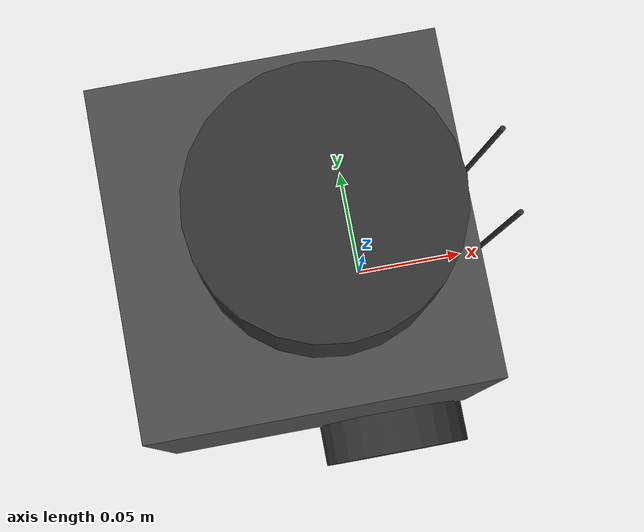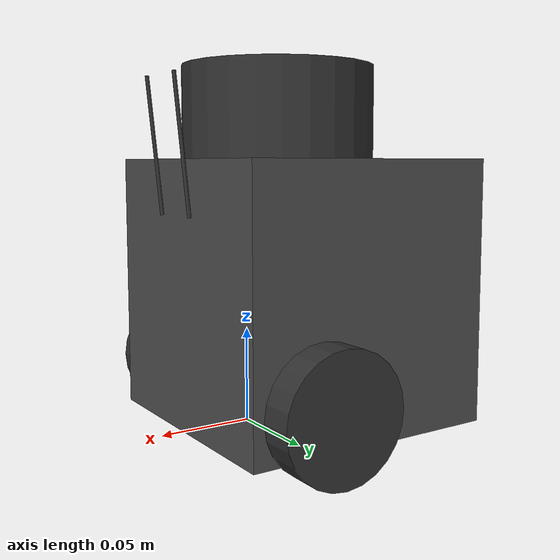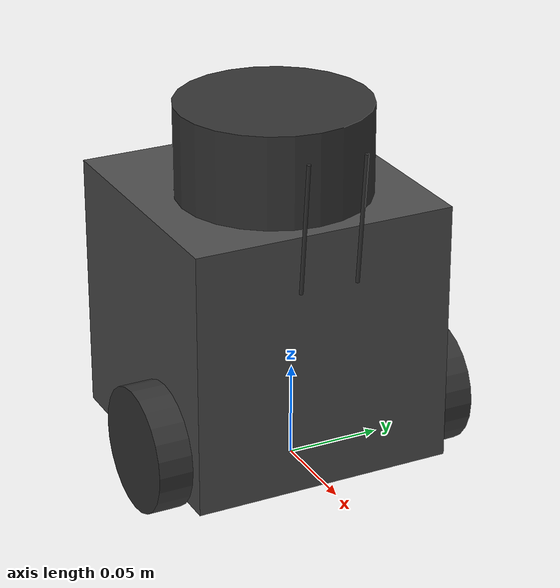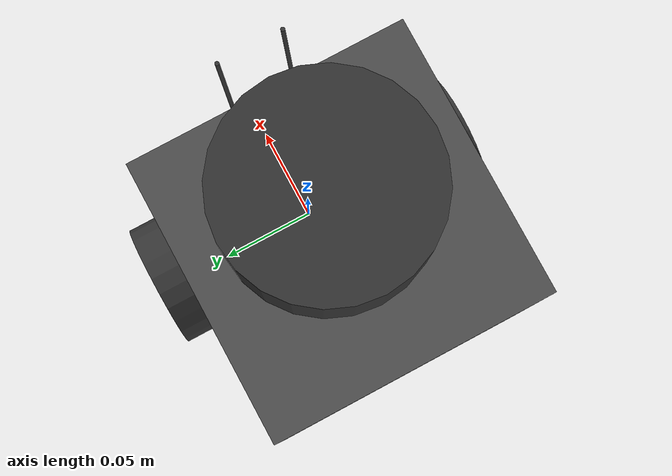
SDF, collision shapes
<?xml version="1.0" ?>
<sdf version="1.6">
  <model name="turtlebot3_burger_cam">
    <pose>0.0 0.0 0.0 0.0 0.0 0.0</pose>

    <link name="base_footprint"/>

    <link name="base_link">

      <inertial>
        <pose>-0.064 0 0.070 0 0 0</pose>
        <inertia>
          <ixx>1.9527e-02</ixx>
          <ixy>0</ixy>
          <ixz>0</ixz>
          <iyy>1.9527e-02</iyy>
          <iyz>0</iyz>
          <izz>1.9527e-02</izz>
        </inertia>
        <mass>8.2573504e-01</mass>
      </inertial>

      <collision name="base_collision">
        <pose>-0.032 0 0.070 0 0 0</pose>
        <geometry>
          <box>
            <size>0.14 0.14 0.14</size>
          </box>
        </geometry>
      </collision>

      <visual name="base_visual">
        <pose>-0.032 0 0 0 0 0</pose>
        <geometry>
          <mesh>
            <uri>model://turtlebot3_common/meshes/bases/burger_base.stl</uri>
            <scale>0.001 0.001 0.001</scale>
          </mesh>
        </geometry>
        <material>
          <ambient>0.3 0.3 0.3 1.0</ambient>
          <diffuse>0.3 0.3 0.3 1.0</diffuse>
        </material>
      </visual>
    </link>
<!-- Hook-->
    <link name="dynamixel">
      <pose>0.028 0 0.104 0 0 0</pose>
      <visual name="dynamixel_v">
        <geometry>
          <box>
            <size>0.034 0.026 0.020</size>
          </box>
        </geometry>
      </visual>
      <inertial>
        <mass>0.05</mass>
        <inertia>
          <ixx>4.48e-6</ixx>
          <iyy>6.48e-6</iyy>
          <izz>7.63e-6</izz>
          <ixy>0</ixy>
          <ixz>0</ixz>
          <iyz>0</iyz>
        </inertia>
      </inertial>
    </link>

    <joint name="dynamixel_joint" type="fixed">
      <parent>base_link</parent>
      <child>dynamixel</child>
      <pose>0.02 0 0.15 0 0 0</pose>
      <axis>
        <xyz>0 0 1</xyz>
      </axis>
    </joint>

    <link name="arm_left">
      <pose>0.04 0.0155 0.104 -1.57 -1.47 0</pose>
      <visual name="mount_left_v">
        <geometry>
          <cylinder>
            <radius>0.0075</radius>
            <length>0.005</length>
          </cylinder>
        </geometry>
        <material>
          <ambient>0.2 0.2 0.2 1.0</ambient>
          <diffuse>0.2 0.2 0.2 1.0</diffuse>
        </material>
      </visual>
      <visual name="arm_left_v">
        <pose>0.0425 0 0 0 1.57 0</pose>
        <geometry>
          <cylinder>
            <radius>0.001</radius>
            <length>0.07</length>
          </cylinder>
        </geometry>
        <material>
          <ambient>0.5 0.5 0.5 1.0</ambient>
          <diffuse>0.5 0.5 0.5 1.0</diffuse>
        </material>
      </visual>
      <collision name="arm_left_c">
        <pose>0.0425 0 0 0 1.57 0</pose>
        <geometry>
          <cylinder>
            <radius>0.001</radius>
            <length>0.07</length>
          </cylinder>
        </geometry>
      </collision>
      <inertial>
        <mass>0.003</mass>
        <inertia>
          <ixx>1.5e-9</ixx>
          <iyy>2.45e-6</iyy>
          <izz>2.45e-6</izz>
          <ixy>0</ixy>
          <ixz>0</ixz>
          <iyz>0</iyz>
        </inertia>
      </inertial>
    </link>

    <joint name="arm_left_joint" type="fixed">
      <parent>dynamixel</parent>
      <child>arm_left</child>
      <pose>0 0 0 0 0 0</pose>
      <axis>
        <xyz>0 0 1</xyz>
      </axis>
    </joint>

    <link name="arm_right">
      <pose>0.04 -0.0155 0.104 -1.57 -1.47 0</pose>
      <visual name="mount_right_v">
        <geometry>
          <cylinder>
            <radius>0.0075</radius>
            <length>0.005</length>
          </cylinder>
        </geometry>
        <material>
          <ambient>0.2 0.2 0.2 1.0</ambient>
          <diffuse>0.2 0.2 0.2 1.0</diffuse>
        </material>
      </visual>
      <visual name="arm_right_v">
        <pose>0.0425 0 0 0 1.57 0</pose>
        <geometry>
          <cylinder>
            <radius>0.001</radius>
            <length>0.07</length>
          </cylinder>
        </geometry>
        <material>
          <ambient>0.5 0.5 0.5 1.0</ambient>
          <diffuse>0.5 0.5 0.5 1.0</diffuse>
        </material>
      </visual>
      <collision name="arm_right_c">
        <pose>0.0425 0 0 0 1.57 0</pose>
        <geometry>
          <cylinder>
            <radius>0.001</radius>
            <length>0.07</length>
          </cylinder>
        </geometry>
      </collision>
      <inertial>
        <mass>0.003</mass>
        <inertia>
          <ixx>1.5e-9</ixx>
          <iyy>2.45e-6</iyy>
          <izz>2.45e-6</izz>
          <ixy>0</ixy>
          <ixz>0</ixz>
          <iyz>0</iyz>
        </inertia>
      </inertial>
    </link>

    <joint name="arm_right_joint" type="fixed">
      <parent>dynamixel</parent>
      <child>arm_right</child>
      <pose>0 0 0 0 0 0</pose>
      <axis>
        <xyz>0 0 1</xyz>
      </axis>
      <limit>
        <lower>0</lower>
        <upper>1.4</upper>
        <effort>1.0</effort>
        <velocity>1.0</velocity>
      </limit>
    </joint>
    <link name="imu_link">
      <sensor name="tb3_imu" type="imu">
        <always_on>true</always_on>
        <update_rate>200</update_rate>
        <topic>imu</topic>
        <imu>
          <angular_velocity>
            <x>
              <noise type="gaussian">
                <mean>0.0</mean>
                <stddev>2e-4</stddev>
              </noise>
            </x>
            <y>
              <noise type="gaussian">
                <mean>0.0</mean>
                <stddev>2e-4</stddev>
              </noise>
            </y>
            <z>
              <noise type="gaussian">
                <mean>0.0</mean>
                <stddev>2e-4</stddev>
              </noise>
            </z>
          </angular_velocity>
          <linear_acceleration>
            <x>
              <noise type="gaussian">
                <mean>0.0</mean>
                <stddev>1.7e-2</stddev>
              </noise>
            </x>
            <y>
              <noise type="gaussian">
                <mean>0.0</mean>
                <stddev>1.7e-2</stddev>
              </noise>
            </y>
            <z>
              <noise type="gaussian">
                <mean>0.0</mean>
                <stddev>1.7e-2</stddev>
              </noise>
            </z>
          </linear_acceleration>
        </imu>
      </sensor>
    </link>

    <link name="base_scan">
      <inertial>
        <pose>-0.020 0 0.161 0 0 0</pose>
        <inertia>
          <ixx>0.0001</ixx>
          <ixy>0.000</ixy>
          <ixz>0.000</ixz>
          <iyy>0.0001</iyy>
          <iyz>0.000</iyz>
          <izz>0.0001</izz>
        </inertia>
        <mass>0.114</mass>
      </inertial>

      <collision name="lidar_sensor_collision">
        <pose>-0.020 0 0.161 0 0 0</pose>
        <geometry>
          <cylinder>
            <radius>0.0508</radius>
            <length>0.055</length>
          </cylinder>
        </geometry>
      </collision>

      <visual name="lidar_sensor_visual">
        <pose>-0.032 0 0.171 0 0 0</pose>
        <geometry>
          <mesh>
            <uri>model://turtlebot3_common/meshes/sensors/lds.stl</uri>
            <scale>0.001 0.001 0.001</scale>
          </mesh>
        </geometry>
        <material>
          <ambient>0.2 0.2 0.2 1.0</ambient>
          <diffuse>0.2 0.2 0.2 1.0</diffuse>
        </material>
      </visual>

      <sensor name="hls_lfcd_lds" type="gpu_lidar">
        <always_on>true</always_on>
        <visualize>false</visualize>
        <pose>-0.032 0 0.171 0 0 0</pose>
        <update_rate>5</update_rate>
        <topic>scan</topic>
        <gz_frame_id>base_scan</gz_frame_id>
        <lidar>
          <scan>
            <horizontal>
              <samples>360</samples>
              <resolution>1.000000</resolution>
              <min_angle>0.000000</min_angle>
              <max_angle>6.280000</max_angle>
            </horizontal>
          </scan>
          <range>
            <min>0.120000</min>
            <max>3.5</max>
            <resolution>0.015000</resolution>
          </range>
          <noise>
            <type>gaussian</type>
            <mean>0.0</mean>
            <stddev>0.01</stddev>
          </noise>
        </lidar>
      </sensor>
    </link>

    <link name="wheel_left_link">

      <inertial>
        <pose>0 0.08 0.023 -1.57 0 0</pose>
        <inertia>
          <ixx>5.445e-05</ixx>
          <ixy>0</ixy>
          <ixz>0</ixz>
          <iyy>5.445e-05</iyy>
          <iyz>0</iyz>
          <izz>1.089e-04</izz>
        </inertia>
        <mass>0.1</mass>
      </inertial>

      <collision name="wheel_left_collision">
        <pose>0 0.08 0.023 -1.57 0 0</pose>
        <geometry>
          <cylinder>
            <radius>0.033</radius>
            <length>0.018</length>
          </cylinder>
        </geometry>
        <surface>
          <!-- This friction pamareter don't contain reliable data!! -->
          <friction>
            <ode>
              <mu>100000.0</mu>
              <mu2>100000.0</mu2>
              <fdir1>0 0 0</fdir1>
              <slip1>0.0</slip1>
              <slip2>0.0</slip2>
            </ode>
          </friction>
          <contact>
            <ode>
              <soft_cfm>0</soft_cfm>
              <soft_erp>0.2</soft_erp>
              <kp>1e+5</kp>
              <kd>1</kd>
              <max_vel>0.01</max_vel>
              <min_depth>0.001</min_depth>
            </ode>
          </contact>
        </surface>
      </collision>

      <visual name="wheel_left_visual">
        <pose>0 0.08 0.023 0 0 0</pose>
        <geometry>
          <mesh>
            <uri>model://turtlebot3_common/meshes/wheels/left_tire.stl</uri>
            <scale>0.001 0.001 0.001</scale>
          </mesh>
        </geometry>
        <material>
          <ambient>0.2 0.2 0.2 1.0</ambient>
          <diffuse>0.2 0.2 0.2 1.0</diffuse>
        </material>
      </visual>
    </link>

    <link name="wheel_right_link">

      <inertial>
        <pose>0.0 -0.08 0.023 -1.57 0 0</pose>
        <inertia>
          <ixx>5.445e-05</ixx>
          <ixy>0</ixy>
          <ixz>0</ixz>
          <iyy>5.445e-05</iyy>
          <iyz>0</iyz>
          <izz>1.089e-04</izz>
        </inertia>
        <mass>0.1</mass>
      </inertial>

      <collision name="wheel_right_collision">
        <pose>0.0 -0.08 0.023 -1.57 0 0</pose>
        <geometry>
          <cylinder>
            <radius>0.033</radius>
            <length>0.018</length>
          </cylinder>
        </geometry>
        <surface>
          <!-- This friction pamareter don't contain reliable data!! -->
          <friction>
            <ode>
              <mu>100000.0</mu>
              <mu2>100000.0</mu2>
              <fdir1>0 0 0</fdir1>
              <slip1>0.0</slip1>
              <slip2>0.0</slip2>
            </ode>
          </friction>
          <contact>
            <ode>
              <soft_cfm>0</soft_cfm>
              <soft_erp>0.2</soft_erp>
              <kp>1e+5</kp>
              <kd>1</kd>
              <max_vel>0.01</max_vel>
              <min_depth>0.001</min_depth>
            </ode>
          </contact>
        </surface>
      </collision>

      <visual name="wheel_right_visual">
        <pose>0.0 -0.08 0.023 0 0 0</pose>
        <geometry>
          <mesh>
            <uri>model://turtlebot3_common/meshes/wheels/right_tire.stl</uri>
            <scale>0.001 0.001 0.001</scale>
          </mesh>
        </geometry>
        <material>
          <ambient>0.2 0.2 0.2 1.0</ambient>
          <diffuse>0.2 0.2 0.2 1.0</diffuse>
        </material>
      </visual>
    </link>

    <link name='caster_back_link'>
      <pose>-0.081 0 -0.004 -1.57 0 0</pose>
      <inertial>
        <mass>0.005</mass>
        <inertia>
          <ixx>0.00001</ixx>
          <ixy>0.000</ixy>
          <ixz>0.000</ixz>
          <iyy>0.00001</iyy>
          <iyz>0.000</iyz>
          <izz>0.00001</izz>
        </inertia>
      </inertial>
      <collision name='collision'>
        <geometry>
          <sphere>
            <radius>0.005000</radius>
          </sphere>
        </geometry>
        <surface>
          <contact>
            <ode>
              <soft_cfm>0</soft_cfm>
              <soft_erp>0.2</soft_erp>
              <kp>1e+5</kp>
              <kd>1</kd>
              <max_vel>0.01</max_vel>
              <min_depth>0.001</min_depth>
            </ode>
          </contact>
        </surface>
      </collision>
    </link>

    <link name="camera_link">
      <pose>0.03 0.0 0.15 0 0 0</pose>
      <inertial>
        <inertia>
          <ixx>0.001</ixx>
          <ixy>0.000</ixy>
          <ixz>0.000</ixz>
          <iyy>0.001</iyy>
          <iyz>0.000</iyz>
          <izz>0.001</izz>
        </inertia>
        <mass>0.035</mass>
      </inertial>
      <sensor name="camera" type="camera">
        <always_on>true</always_on>
        <visualize>true</visualize>
        <update_rate>30</update_rate>
        <topic>camera/image_raw</topic>
        <gz_frame_id>camera_rgb_frame</gz_frame_id>
        <camera name="pi_cam">
          <camera_info_topic>camera/camera_info</camera_info_topic>
          <horizontal_fov>1.086</horizontal_fov>
          <image>
            <width>640</width>
            <height>480</height>
            <format>R8G8B8</format>
          </image>
          <clip>
            <near>0.03</near>
            <far>100</far>
          </clip>
          <lens>
            <type>custom</type>
            <custom_function>
              <c1>1.05</c1>
              <c2>4</c2>
              <f>1.0</f>
              <fun>tan</fun>
            </custom_function>
            <scale_to_hfov>true</scale_to_hfov>
            <cutoff_angle>3.1415</cutoff_angle>
            <env_texture_size>512</env_texture_size>
          </lens>
        </camera>
      </sensor>
    </link>

    <joint name="base_joint" type="fixed">
      <parent>base_footprint</parent>
      <child>base_link</child>
      <pose>0.0 0.0 0.010 0 0 0</pose>
    </joint>

    <joint name="wheel_left_joint" type="revolute">
      <parent>base_link</parent>
      <child>wheel_left_link</child>
      <pose>0.0 0.08 0.023 -1.57 0 0</pose>
      <axis>
        <xyz>0 0 1</xyz>
        <limit>
          <effort>20</effort>
        </limit>
      </axis>
    </joint>

    <joint name="wheel_right_joint" type="revolute">
      <parent>base_link</parent>
      <child>wheel_right_link</child>
      <pose>0.0 -0.08 0.023 -1.57 0 0</pose>
      <axis>
        <xyz>0 0 1</xyz>
        <limit>
          <effort>20</effort>
        </limit>
      </axis>
    </joint>

    <joint name='caster_back_joint' type='ball'>
      <parent>base_link</parent>
      <child>caster_back_link</child>
    </joint>

    <joint name="imu_joint" type="fixed">
      <parent>base_link</parent>
      <child>imu_link</child>
      <pose>-0.032 0 0.068 0 0 0</pose>
      <axis>
        <xyz>0 0 1</xyz>
      </axis>
    </joint>

    <joint name="lidar_joint" type="fixed">
      <parent>base_link</parent>
      <child>base_scan</child>
      <pose>-0.032 0 0.171 0 0 0</pose>
      <axis>
        <xyz>0 0 1</xyz>
      </axis>
    </joint>

    <joint name="camera_joint" type="fixed">
      <parent>base_link</parent>
      <child>camera_link</child>
      <pose>0.040 -0.000 0.110 0 0 0</pose>
      <axis>
        <xyz>0 0 1</xyz>
      </axis>
    </joint>

    <plugin filename="gz-sim-diff-drive-system" name="gz::sim::systems::DiffDrive">

      <!-- wheels -->
      <left_joint>wheel_left_joint</left_joint>
      <right_joint>wheel_right_joint</right_joint>

      <!-- kinematics -->
      <wheel_separation>0.160</wheel_separation>
      <wheel_radius>0.033</wheel_radius>

      <!-- limits -->
      <max_linear_acceleration>1.0</max_linear_acceleration>

       <topic>cmd_vel</topic>

       <odom_topic>odom</odom_topic>
       <frame_id>odom</frame_id>
       <child_frame_id>base_footprint</child_frame_id>
       <odom_publisher_frequency>30</odom_publisher_frequency>

       <tf_topic>/tf</tf_topic>

    </plugin>

    <plugin filename="gz-sim-joint-state-publisher-system" name="gz::sim::systems::JointStatePublisher">
      <topic>joint_states</topic>
      <joint_name>wheel_left_joint</joint_name>
      <joint_name>wheel_right_joint</joint_name>
    </plugin>

  </model>
</sdf>
